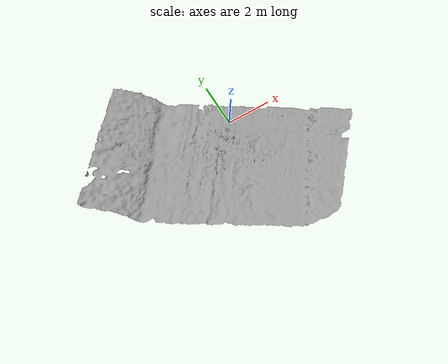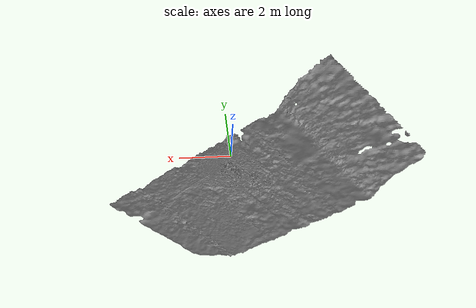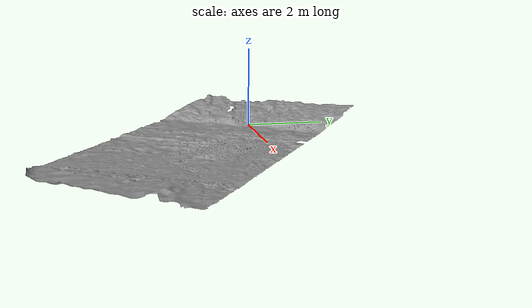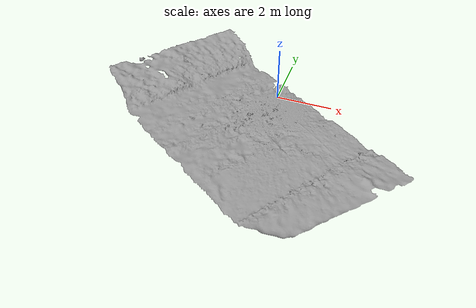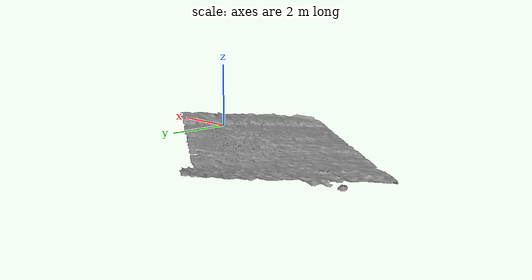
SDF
<?xml version="1.0" ?>
<sdf version="1.6">
  <model name="estacionamento_003">
    <!-- This makes the object static -->
    <static>true</static>
    <link name="link">
      <!-- Visual representation -->
      <visual name="visual">
      <laser_retro>4</laser_retro>
        <geometry>
          <mesh>
            <uri>model://estacionamento_003/meshes/estacionamento_003_lvl9.stl</uri>
            <scale>2 2 2</scale>
          </mesh>
        </geometry>
        <material> <!-- Material/cor da mesh -->
          <script>
            <uri>file://media/materials/scripts/gazebo.material</uri>
            <name>Gazebo/Grey</name>
          </script>
        </material>
      </visual>
      <!-- Optional collision representation -->
      <collision name="collision">
      <laser_retro>4</laser_retro>
        <geometry>
          <mesh>
            <uri>model://estacionamento_003/meshes/estacionamento_003_lvl9.stl</uri>
            <scale>2 2 2</scale>
          </mesh>
        </geometry>
      </collision>
    </link>
  </model>
</sdf>
